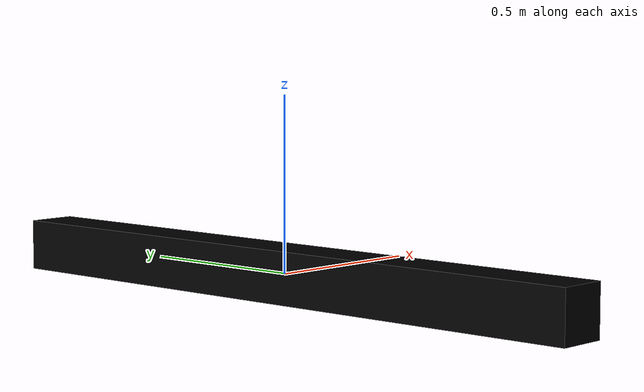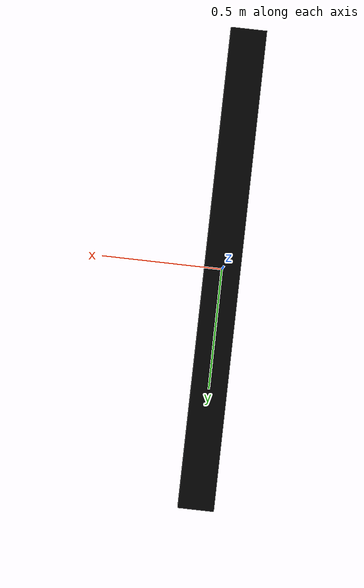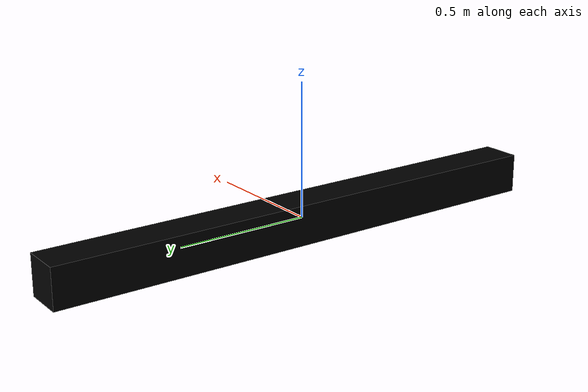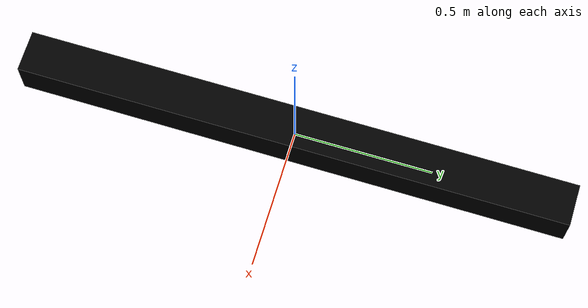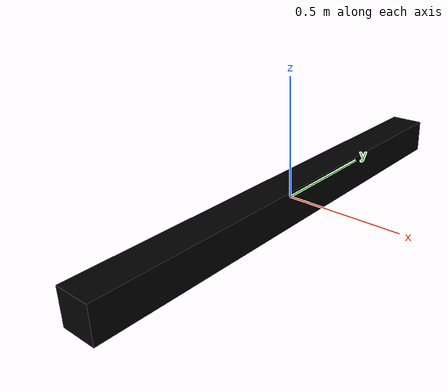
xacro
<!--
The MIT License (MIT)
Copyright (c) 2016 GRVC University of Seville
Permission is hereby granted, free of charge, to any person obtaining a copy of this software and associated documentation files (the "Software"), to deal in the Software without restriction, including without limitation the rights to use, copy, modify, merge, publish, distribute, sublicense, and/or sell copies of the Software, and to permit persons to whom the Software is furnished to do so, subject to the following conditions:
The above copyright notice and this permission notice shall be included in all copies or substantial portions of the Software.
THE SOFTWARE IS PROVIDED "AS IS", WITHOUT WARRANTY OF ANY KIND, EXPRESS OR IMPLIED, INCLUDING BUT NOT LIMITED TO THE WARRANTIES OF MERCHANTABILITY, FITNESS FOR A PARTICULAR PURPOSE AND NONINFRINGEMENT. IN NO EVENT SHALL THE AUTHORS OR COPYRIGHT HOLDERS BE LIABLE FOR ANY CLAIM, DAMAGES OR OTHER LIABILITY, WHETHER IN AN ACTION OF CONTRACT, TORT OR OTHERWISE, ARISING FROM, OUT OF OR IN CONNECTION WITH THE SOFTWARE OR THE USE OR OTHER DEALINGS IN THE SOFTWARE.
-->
<?xml version="1.0"?>
<robot name="grvc_quadrotor" xmlns:xacro="http://ros.org/wiki/xacro">

  <xacro:arg name="model_name" default="object_big_object"/>
  <xacro:arg name="id" default="1"/>

  <!-- Included URDF Files -->
  <xacro:include filename="$(find mbzirc_gcs_view)/urdf/object_big_base.urdf.xacro" />

  <!-- Instantiate quadrotor_base_macro once (has no parameters atm) -->
  <!-- model_name must be ual_${id} for ual node to find the uav -->
  <xacro:big_object id="$(arg id)" model_name="$(arg model_name)"/>

</robot>

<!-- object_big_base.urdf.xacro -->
<robot xmlns:xacro="http://ros.org/wiki/xacro">

  <!-- Main object link -->
  <xacro:macro name="big_object" params="id model_name">
    <link name="base_link_${id}">
      <inertial>
        <mass value="0.5" />
        <origin xyz="0 0 0.0" />
        <inertia ixx="0.01152" ixy="0.0" ixz="0.0" iyy="0.01152" iyz="0.0" izz="0.0218" />
      </inertial>

      <visual>
      <origin xyz="0 0 0" rpy="0 0 1.57" />
      <geometry>
          <box size="2 0.15 0.15"/>
      </geometry>
      <material name="black">
          <color rgba="0 0 0 1"/>
      </material>
    </visual>
    <collision>
      <origin xyz="0 0 0" rpy="0 0 0" />
      <geometry>
          <box size="2 0.15 0.15"/>
      </geometry>
    </collision>
  </link>

    <gazebo reference="base_link_${id}">
      <material>Gazebo/Orange</material>
      <turnGravityOff>false</turnGravityOff>
    </gazebo>

  </xacro:macro>

</robot>
